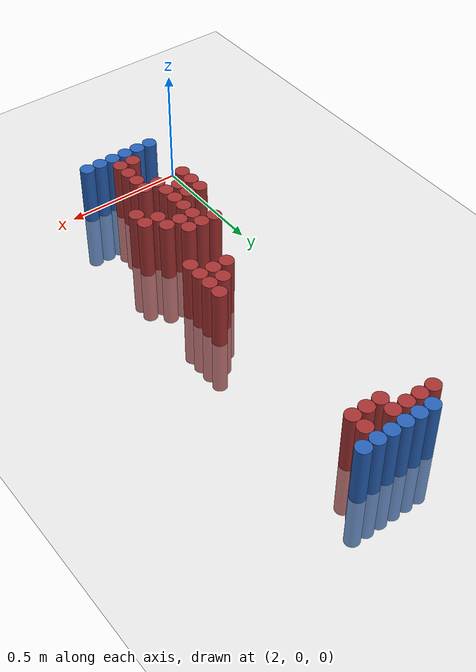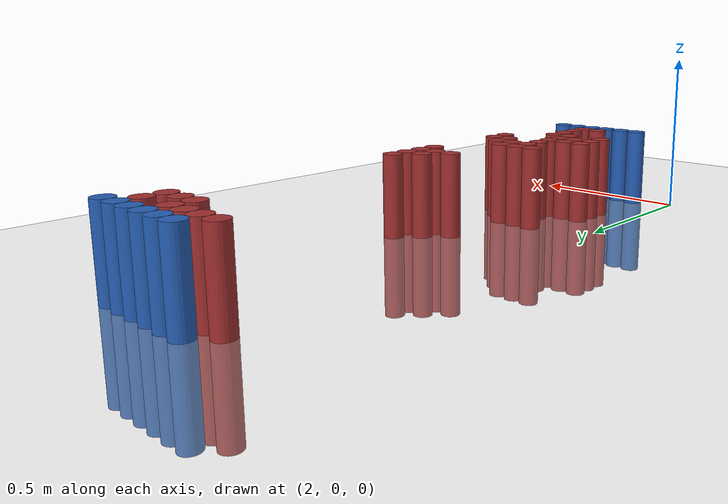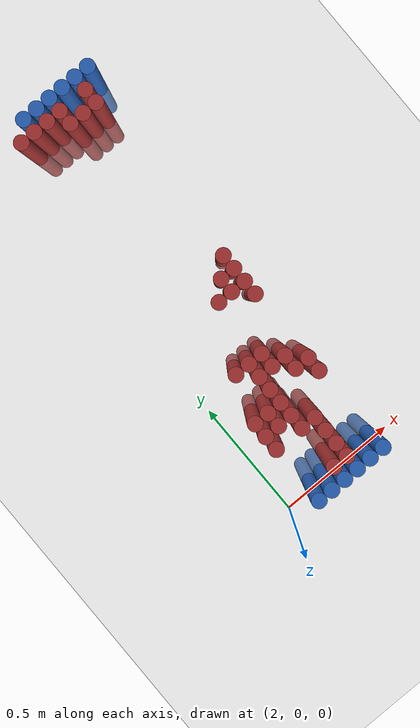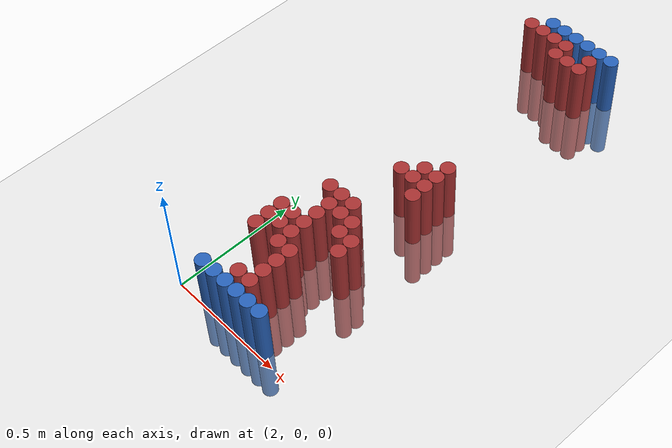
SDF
<sdf version="1.6">
 <world name="default">
  <model name="ground_plane">
   <static>1</static>
   <link name="link">
    <collision name="collision">
     <geometry><plane><normal>0 0 1</normal><size>100 100</size></plane></geometry>
     <surface><friction><ode><mu>100</mu><mu2>50</mu2></ode></friction></surface>
    </collision>
    <visual name="visual">
     <cast_shadows>0</cast_shadows>
     <geometry><plane><normal>0 0 1</normal><size>100 100</size></plane></geometry>
     <material>
      <script><uri>file://media/materials/scripts/gazebo.material</uri><name>Gazebo/Grey</name></script>
     </material>
    </visual>
   </link>
  </model>
  <model name="unit_cylinder_97">
   <static>1</static>
   <pose>2.190000 1.770000 0.000000 0.000000 0.000000 0.000000</pose>
   <link name="link">
    <inertial>
     <mass>1</mass>
     <inertia><ixx>0.145833</ixx><ixy>0</ixy><ixz>0</ixz><iyy>0.145833</iyy><iyz>0</iyz><izz>0.125</izz></inertia>
    </inertial>
    <collision name="collision">
     <geometry><cylinder><radius>0.030000</radius><length>0.5</length></cylinder></geometry>
    </collision>
    <visual name="visual">
     <geometry><cylinder><radius>0.030000</radius><length>0.5</length></cylinder></geometry>
     <material>
      <ambient>0.152000 0.379000 0.720000 1</ambient>
      <diffuse>0.152000 0.379000 0.720000 1</diffuse>
     </material>
     <material>
      <script><name>Gazebo/Grey</name><uri>file://media/materials/scripts/gazebo.material</uri></script>
     </material>
    </visual>
   </link>
  </model>
  <model name="unit_cylinder_98">
   <static>1</static>
   <pose>2.250000 1.770000 0.000000 0.000000 0.000000 0.000000</pose>
   <link name="link">
    <inertial>
     <mass>1</mass>
     <inertia><ixx>0.145833</ixx><ixy>0</ixy><ixz>0</ixz><iyy>0.145833</iyy><iyz>0</iyz><izz>0.125</izz></inertia>
    </inertial>
    <collision name="collision">
     <geometry><cylinder><radius>0.030000</radius><length>0.5</length></cylinder></geometry>
    </collision>
    <visual name="visual">
     <geometry><cylinder><radius>0.030000</radius><length>0.5</length></cylinder></geometry>
     <material>
      <ambient>0.152000 0.379000 0.720000 1</ambient>
      <diffuse>0.152000 0.379000 0.720000 1</diffuse>
     </material>
     <material>
      <script><name>Gazebo/Grey</name><uri>file://media/materials/scripts/gazebo.material</uri></script>
     </material>
    </visual>
   </link>
  </model>
  <model name="unit_cylinder_99">
   <static>1</static>
   <pose>2.310000 1.770000 0.000000 0.000000 0.000000 0.000000</pose>
   <link name="link">
    <inertial>
     <mass>1</mass>
     <inertia><ixx>0.145833</ixx><ixy>0</ixy><ixz>0</ixz><iyy>0.145833</iyy><iyz>0</iyz><izz>0.125</izz></inertia>
    </inertial>
    <collision name="collision">
     <geometry><cylinder><radius>0.030000</radius><length>0.5</length></cylinder></geometry>
    </collision>
    <visual name="visual">
     <geometry><cylinder><radius>0.030000</radius><length>0.5</length></cylinder></geometry>
     <material>
      <ambient>0.152000 0.379000 0.720000 1</ambient>
      <diffuse>0.152000 0.379000 0.720000 1</diffuse>
     </material>
     <material>
      <script><name>Gazebo/Grey</name><uri>file://media/materials/scripts/gazebo.material</uri></script>
     </material>
    </visual>
   </link>
  </model>
  <model name="unit_cylinder_100">
   <static>1</static>
   <pose>2.370000 1.770000 0.000000 0.000000 0.000000 0.000000</pose>
   <link name="link">
    <inertial>
     <mass>1</mass>
     <inertia><ixx>0.145833</ixx><ixy>0</ixy><ixz>0</ixz><iyy>0.145833</iyy><iyz>0</iyz><izz>0.125</izz></inertia>
    </inertial>
    <collision name="collision">
     <geometry><cylinder><radius>0.030000</radius><length>0.5</length></cylinder></geometry>
    </collision>
    <visual name="visual">
     <geometry><cylinder><radius>0.030000</radius><length>0.5</length></cylinder></geometry>
     <material>
      <ambient>0.152000 0.379000 0.720000 1</ambient>
      <diffuse>0.152000 0.379000 0.720000 1</diffuse>
     </material>
     <material>
      <script><name>Gazebo/Grey</name><uri>file://media/materials/scripts/gazebo.material</uri></script>
     </material>
    </visual>
   </link>
  </model>
  <model name="unit_cylinder_101">
   <static>1</static>
   <pose>2.430000 1.770000 0.000000 0.000000 0.000000 0.000000</pose>
   <link name="link">
    <inertial>
     <mass>1</mass>
     <inertia><ixx>0.145833</ixx><ixy>0</ixy><ixz>0</ixz><iyy>0.145833</iyy><iyz>0</iyz><izz>0.125</izz></inertia>
    </inertial>
    <collision name="collision">
     <geometry><cylinder><radius>0.030000</radius><length>0.5</length></cylinder></geometry>
    </collision>
    <visual name="visual">
     <geometry><cylinder><radius>0.030000</radius><length>0.5</length></cylinder></geometry>
     <material>
      <ambient>0.152000 0.379000 0.720000 1</ambient>
      <diffuse>0.152000 0.379000 0.720000 1</diffuse>
     </material>
     <material>
      <script><name>Gazebo/Grey</name><uri>file://media/materials/scripts/gazebo.material</uri></script>
     </material>
    </visual>
   </link>
  </model>
  <model name="unit_cylinder_102">
   <static>1</static>
   <pose>2.490000 1.770000 0.000000 0.000000 0.000000 0.000000</pose>
   <link name="link">
    <inertial>
     <mass>1</mass>
     <inertia><ixx>0.145833</ixx><ixy>0</ixy><ixz>0</ixz><iyy>0.145833</iyy><iyz>0</iyz><izz>0.125</izz></inertia>
    </inertial>
    <collision name="collision">
     <geometry><cylinder><radius>0.030000</radius><length>0.5</length></cylinder></geometry>
    </collision>
    <visual name="visual">
     <geometry><cylinder><radius>0.030000</radius><length>0.5</length></cylinder></geometry>
     <material>
      <ambient>0.152000 0.379000 0.720000 1</ambient>
      <diffuse>0.152000 0.379000 0.720000 1</diffuse>
     </material>
     <material>
      <script><name>Gazebo/Grey</name><uri>file://media/materials/scripts/gazebo.material</uri></script>
     </material>
    </visual>
   </link>
  </model>
  <model name="unit_cylinder_125">
   <static>1</static>
   <pose>2.130000 1.710000 0.000000 0.000000 0.000000 0.000000</pose>
   <link name="link">
    <inertial>
     <mass>1</mass>
     <inertia><ixx>0.145833</ixx><ixy>0</ixy><ixz>0</ixz><iyy>0.145833</iyy><iyz>0</iyz><izz>0.125</izz></inertia>
    </inertial>
    <collision name="collision">
     <geometry><cylinder><radius>0.030000</radius><length>0.5</length></cylinder></geometry>
    </collision>
    <visual name="visual">
     <geometry><cylinder><radius>0.030000</radius><length>0.5</length></cylinder></geometry>
     <material>
      <ambient>0.648000 0.192000 0.192000 1</ambient>
      <diffuse>0.648000 0.192000 0.192000 1</diffuse>
     </material>
     <material>
      <script><name>Gazebo/Grey</name><uri>file://media/materials/scripts/gazebo.material</uri></script>
     </material>
    </visual>
   </link>
  </model>
  <model name="unit_cylinder_126">
   <static>1</static>
   <pose>2.190000 1.710000 0.000000 0.000000 0.000000 0.000000</pose>
   <link name="link">
    <inertial>
     <mass>1</mass>
     <inertia><ixx>0.145833</ixx><ixy>0</ixy><ixz>0</ixz><iyy>0.145833</iyy><iyz>0</iyz><izz>0.125</izz></inertia>
    </inertial>
    <collision name="collision">
     <geometry><cylinder><radius>0.030000</radius><length>0.5</length></cylinder></geometry>
    </collision>
    <visual name="visual">
     <geometry><cylinder><radius>0.030000</radius><length>0.5</length></cylinder></geometry>
     <material>
      <ambient>0.648000 0.192000 0.192000 1</ambient>
      <diffuse>0.648000 0.192000 0.192000 1</diffuse>
     </material>
     <material>
      <script><name>Gazebo/Grey</name><uri>file://media/materials/scripts/gazebo.material</uri></script>
     </material>
    </visual>
   </link>
  </model>
  <model name="unit_cylinder_127">
   <static>1</static>
   <pose>2.250000 1.710000 0.000000 0.000000 0.000000 0.000000</pose>
   <link name="link">
    <inertial>
     <mass>1</mass>
     <inertia><ixx>0.145833</ixx><ixy>0</ixy><ixz>0</ixz><iyy>0.145833</iyy><iyz>0</iyz><izz>0.125</izz></inertia>
    </inertial>
    <collision name="collision">
     <geometry><cylinder><radius>0.030000</radius><length>0.5</length></cylinder></geometry>
    </collision>
    <visual name="visual">
     <geometry><cylinder><radius>0.030000</radius><length>0.5</length></cylinder></geometry>
     <material>
      <ambient>0.648000 0.192000 0.192000 1</ambient>
      <diffuse>0.648000 0.192000 0.192000 1</diffuse>
     </material>
     <material>
      <script><name>Gazebo/Grey</name><uri>file://media/materials/scripts/gazebo.material</uri></script>
     </material>
    </visual>
   </link>
  </model>
  <model name="unit_cylinder_128">
   <static>1</static>
   <pose>2.310000 1.710000 0.000000 0.000000 0.000000 0.000000</pose>
   <link name="link">
    <inertial>
     <mass>1</mass>
     <inertia><ixx>0.145833</ixx><ixy>0</ixy><ixz>0</ixz><iyy>0.145833</iyy><iyz>0</iyz><izz>0.125</izz></inertia>
    </inertial>
    <collision name="collision">
     <geometry><cylinder><radius>0.030000</radius><length>0.5</length></cylinder></geometry>
    </collision>
    <visual name="visual">
     <geometry><cylinder><radius>0.030000</radius><length>0.5</length></cylinder></geometry>
     <material>
      <ambient>0.648000 0.192000 0.192000 1</ambient>
      <diffuse>0.648000 0.192000 0.192000 1</diffuse>
     </material>
     <material>
      <script><name>Gazebo/Grey</name><uri>file://media/materials/scripts/gazebo.material</uri></script>
     </material>
    </visual>
   </link>
  </model>
  <model name="unit_cylinder_129">
   <static>1</static>
   <pose>2.430000 1.710000 0.000000 0.000000 0.000000 0.000000</pose>
   <link name="link">
    <inertial>
     <mass>1</mass>
     <inertia><ixx>0.145833</ixx><ixy>0</ixy><ixz>0</ixz><iyy>0.145833</iyy><iyz>0</iyz><izz>0.125</izz></inertia>
    </inertial>
    <collision name="collision">
     <geometry><cylinder><radius>0.030000</radius><length>0.5</length></cylinder></geometry>
    </collision>
    <visual name="visual">
     <geometry><cylinder><radius>0.030000</radius><length>0.5</length></cylinder></geometry>
     <material>
      <ambient>0.648000 0.192000 0.192000 1</ambient>
      <diffuse>0.648000 0.192000 0.192000 1</diffuse>
     </material>
     <material>
      <script><name>Gazebo/Grey</name><uri>file://media/materials/scripts/gazebo.material</uri></script>
     </material>
    </visual>
   </link>
  </model>
  <model name="unit_cylinder_143">
   <static>1</static>
   <pose>2.310000 1.650000 0.000000 0.000000 0.000000 0.000000</pose>
   <link name="link">
    <inertial>
     <mass>1</mass>
     <inertia><ixx>0.145833</ixx><ixy>0</ixy><ixz>0</ixz><iyy>0.145833</iyy><iyz>0</iyz><izz>0.125</izz></inertia>
    </inertial>
    <collision name="collision">
     <geometry><cylinder><radius>0.030000</radius><length>0.5</length></cylinder></geometry>
    </collision>
    <visual name="visual">
     <geometry><cylinder><radius>0.030000</radius><length>0.5</length></cylinder></geometry>
     <material>
      <ambient>0.648000 0.192000 0.192000 1</ambient>
      <diffuse>0.648000 0.192000 0.192000 1</diffuse>
     </material>
     <material>
      <script><name>Gazebo/Grey</name><uri>file://media/materials/scripts/gazebo.material</uri></script>
     </material>
    </visual>
   </link>
  </model>
  <model name="unit_cylinder_144">
   <static>1</static>
   <pose>2.370000 1.650000 0.000000 0.000000 0.000000 0.000000</pose>
   <link name="link">
    <inertial>
     <mass>1</mass>
     <inertia><ixx>0.145833</ixx><ixy>0</ixy><ixz>0</ixz><iyy>0.145833</iyy><iyz>0</iyz><izz>0.125</izz></inertia>
    </inertial>
    <collision name="collision">
     <geometry><cylinder><radius>0.030000</radius><length>0.5</length></cylinder></geometry>
    </collision>
    <visual name="visual">
     <geometry><cylinder><radius>0.030000</radius><length>0.5</length></cylinder></geometry>
     <material>
      <ambient>0.648000 0.192000 0.192000 1</ambient>
      <diffuse>0.648000 0.192000 0.192000 1</diffuse>
     </material>
     <material>
      <script><name>Gazebo/Grey</name><uri>file://media/materials/scripts/gazebo.material</uri></script>
     </material>
    </visual>
   </link>
  </model>
  <model name="unit_cylinder_145">
   <static>1</static>
   <pose>2.430000 1.650000 0.000000 0.000000 0.000000 0.000000</pose>
   <link name="link">
    <inertial>
     <mass>1</mass>
     <inertia><ixx>0.145833</ixx><ixy>0</ixy><ixz>0</ixz><iyy>0.145833</iyy><iyz>0</iyz><izz>0.125</izz></inertia>
    </inertial>
    <collision name="collision">
     <geometry><cylinder><radius>0.030000</radius><length>0.5</length></cylinder></geometry>
    </collision>
    <visual name="visual">
     <geometry><cylinder><radius>0.030000</radius><length>0.5</length></cylinder></geometry>
     <material>
      <ambient>0.648000 0.192000 0.192000 1</ambient>
      <diffuse>0.648000 0.192000 0.192000 1</diffuse>
     </material>
     <material>
      <script><name>Gazebo/Grey</name><uri>file://media/materials/scripts/gazebo.material</uri></script>
     </material>
    </visual>
   </link>
  </model>
  <model name="unit_cylinder_182">
   <static>1</static>
   <pose>2.430000 0.930000 0.000000 0.000000 0.000000 0.000000</pose>
   <link name="link">
    <inertial>
     <mass>1</mass>
     <inertia><ixx>0.145833</ixx><ixy>0</ixy><ixz>0</ixz><iyy>0.145833</iyy><iyz>0</iyz><izz>0.125</izz></inertia>
    </inertial>
    <collision name="collision">
     <geometry><cylinder><radius>0.030000</radius><length>0.5</length></cylinder></geometry>
    </collision>
    <visual name="visual">
     <geometry><cylinder><radius>0.030000</radius><length>0.5</length></cylinder></geometry>
     <material>
      <ambient>0.648000 0.192000 0.192000 1</ambient>
      <diffuse>0.648000 0.192000 0.192000 1</diffuse>
     </material>
     <material>
      <script><name>Gazebo/Grey</name><uri>file://media/materials/scripts/gazebo.material</uri></script>
     </material>
    </visual>
   </link>
  </model>
  <model name="unit_cylinder_186">
   <static>1</static>
   <pose>2.370000 0.870000 0.000000 0.000000 0.000000 0.000000</pose>
   <link name="link">
    <inertial>
     <mass>1</mass>
     <inertia><ixx>0.145833</ixx><ixy>0</ixy><ixz>0</ixz><iyy>0.145833</iyy><iyz>0</iyz><izz>0.125</izz></inertia>
    </inertial>
    <collision name="collision">
     <geometry><cylinder><radius>0.030000</radius><length>0.5</length></cylinder></geometry>
    </collision>
    <visual name="visual">
     <geometry><cylinder><radius>0.030000</radius><length>0.5</length></cylinder></geometry>
     <material>
      <ambient>0.648000 0.192000 0.192000 1</ambient>
      <diffuse>0.648000 0.192000 0.192000 1</diffuse>
     </material>
     <material>
      <script><name>Gazebo/Grey</name><uri>file://media/materials/scripts/gazebo.material</uri></script>
     </material>
    </visual>
   </link>
  </model>
  <model name="unit_cylinder_187">
   <static>1</static>
   <pose>2.430000 0.870000 0.000000 0.000000 0.000000 0.000000</pose>
   <link name="link">
    <inertial>
     <mass>1</mass>
     <inertia><ixx>0.145833</ixx><ixy>0</ixy><ixz>0</ixz><iyy>0.145833</iyy><iyz>0</iyz><izz>0.125</izz></inertia>
    </inertial>
    <collision name="collision">
     <geometry><cylinder><radius>0.030000</radius><length>0.5</length></cylinder></geometry>
    </collision>
    <visual name="visual">
     <geometry><cylinder><radius>0.030000</radius><length>0.5</length></cylinder></geometry>
     <material>
      <ambient>0.648000 0.192000 0.192000 1</ambient>
      <diffuse>0.648000 0.192000 0.192000 1</diffuse>
     </material>
     <material>
      <script><name>Gazebo/Grey</name><uri>file://media/materials/scripts/gazebo.material</uri></script>
     </material>
    </visual>
   </link>
  </model>
  <model name="unit_cylinder_192">
   <static>1</static>
   <pose>2.310000 0.810000 0.000000 0.000000 0.000000 0.000000</pose>
   <link name="link">
    <inertial>
     <mass>1</mass>
     <inertia><ixx>0.145833</ixx><ixy>0</ixy><ixz>0</ixz><iyy>0.145833</iyy><iyz>0</iyz><izz>0.125</izz></inertia>
    </inertial>
    <collision name="collision">
     <geometry><cylinder><radius>0.030000</radius><length>0.5</length></cylinder></geometry>
    </collision>
    <visual name="visual">
     <geometry><cylinder><radius>0.030000</radius><length>0.5</length></cylinder></geometry>
     <material>
      <ambient>0.648000 0.192000 0.192000 1</ambient>
      <diffuse>0.648000 0.192000 0.192000 1</diffuse>
     </material>
     <material>
      <script><name>Gazebo/Grey</name><uri>file://media/materials/scripts/gazebo.material</uri></script>
     </material>
    </visual>
   </link>
  </model>
  <model name="unit_cylinder_193">
   <static>1</static>
   <pose>2.370000 0.810000 0.000000 0.000000 0.000000 0.000000</pose>
   <link name="link">
    <inertial>
     <mass>1</mass>
     <inertia><ixx>0.145833</ixx><ixy>0</ixy><ixz>0</ixz><iyy>0.145833</iyy><iyz>0</iyz><izz>0.125</izz></inertia>
    </inertial>
    <collision name="collision">
     <geometry><cylinder><radius>0.030000</radius><length>0.5</length></cylinder></geometry>
    </collision>
    <visual name="visual">
     <geometry><cylinder><radius>0.030000</radius><length>0.5</length></cylinder></geometry>
     <material>
      <ambient>0.648000 0.192000 0.192000 1</ambient>
      <diffuse>0.648000 0.192000 0.192000 1</diffuse>
     </material>
     <material>
      <script><name>Gazebo/Grey</name><uri>file://media/materials/scripts/gazebo.material</uri></script>
     </material>
    </visual>
   </link>
  </model>
  <model name="unit_cylinder_194">
   <static>1</static>
   <pose>2.430000 0.810000 0.000000 0.000000 0.000000 0.000000</pose>
   <link name="link">
    <inertial>
     <mass>1</mass>
     <inertia><ixx>0.145833</ixx><ixy>0</ixy><ixz>0</ixz><iyy>0.145833</iyy><iyz>0</iyz><izz>0.125</izz></inertia>
    </inertial>
    <collision name="collision">
     <geometry><cylinder><radius>0.030000</radius><length>0.5</length></cylinder></geometry>
    </collision>
    <visual name="visual">
     <geometry><cylinder><radius>0.030000</radius><length>0.5</length></cylinder></geometry>
     <material>
      <ambient>0.648000 0.192000 0.192000 1</ambient>
      <diffuse>0.648000 0.192000 0.192000 1</diffuse>
     </material>
     <material>
      <script><name>Gazebo/Grey</name><uri>file://media/materials/scripts/gazebo.material</uri></script>
     </material>
    </visual>
   </link>
  </model>
  <model name="unit_cylinder_204">
   <static>1</static>
   <pose>2.430000 0.750000 0.000000 0.000000 0.000000 0.000000</pose>
   <link name="link">
    <inertial>
     <mass>1</mass>
     <inertia><ixx>0.145833</ixx><ixy>0</ixy><ixz>0</ixz><iyy>0.145833</iyy><iyz>0</iyz><izz>0.125</izz></inertia>
    </inertial>
    <collision name="collision">
     <geometry><cylinder><radius>0.030000</radius><length>0.5</length></cylinder></geometry>
    </collision>
    <visual name="visual">
     <geometry><cylinder><radius>0.030000</radius><length>0.5</length></cylinder></geometry>
     <material>
      <ambient>0.648000 0.192000 0.192000 1</ambient>
      <diffuse>0.648000 0.192000 0.192000 1</diffuse>
     </material>
     <material>
      <script><name>Gazebo/Grey</name><uri>file://media/materials/scripts/gazebo.material</uri></script>
     </material>
    </visual>
   </link>
  </model>
  <model name="unit_cylinder_231">
   <static>1</static>
   <pose>2.190000 0.570000 0.000000 0.000000 0.000000 0.000000</pose>
   <link name="link">
    <inertial>
     <mass>1</mass>
     <inertia><ixx>0.145833</ixx><ixy>0</ixy><ixz>0</ixz><iyy>0.145833</iyy><iyz>0</iyz><izz>0.125</izz></inertia>
    </inertial>
    <collision name="collision">
     <geometry><cylinder><radius>0.030000</radius><length>0.5</length></cylinder></geometry>
    </collision>
    <visual name="visual">
     <geometry><cylinder><radius>0.030000</radius><length>0.5</length></cylinder></geometry>
     <material>
      <ambient>0.648000 0.192000 0.192000 1</ambient>
      <diffuse>0.648000 0.192000 0.192000 1</diffuse>
     </material>
     <material>
      <script><name>Gazebo/Grey</name><uri>file://media/materials/scripts/gazebo.material</uri></script>
     </material>
    </visual>
   </link>
  </model>
  <model name="unit_cylinder_232">
   <static>1</static>
   <pose>2.250000 0.570000 0.000000 0.000000 0.000000 0.000000</pose>
   <link name="link">
    <inertial>
     <mass>1</mass>
     <inertia><ixx>0.145833</ixx><ixy>0</ixy><ixz>0</ixz><iyy>0.145833</iyy><iyz>0</iyz><izz>0.125</izz></inertia>
    </inertial>
    <collision name="collision">
     <geometry><cylinder><radius>0.030000</radius><length>0.5</length></cylinder></geometry>
    </collision>
    <visual name="visual">
     <geometry><cylinder><radius>0.030000</radius><length>0.5</length></cylinder></geometry>
     <material>
      <ambient>0.648000 0.192000 0.192000 1</ambient>
      <diffuse>0.648000 0.192000 0.192000 1</diffuse>
     </material>
     <material>
      <script><name>Gazebo/Grey</name><uri>file://media/materials/scripts/gazebo.material</uri></script>
     </material>
    </visual>
   </link>
  </model>
  <model name="unit_cylinder_233">
   <static>1</static>
   <pose>2.310000 0.570000 0.000000 0.000000 0.000000 0.000000</pose>
   <link name="link">
    <inertial>
     <mass>1</mass>
     <inertia><ixx>0.145833</ixx><ixy>0</ixy><ixz>0</ixz><iyy>0.145833</iyy><iyz>0</iyz><izz>0.125</izz></inertia>
    </inertial>
    <collision name="collision">
     <geometry><cylinder><radius>0.030000</radius><length>0.5</length></cylinder></geometry>
    </collision>
    <visual name="visual">
     <geometry><cylinder><radius>0.030000</radius><length>0.5</length></cylinder></geometry>
     <material>
      <ambient>0.648000 0.192000 0.192000 1</ambient>
      <diffuse>0.648000 0.192000 0.192000 1</diffuse>
     </material>
     <material>
      <script><name>Gazebo/Grey</name><uri>file://media/materials/scripts/gazebo.material</uri></script>
     </material>
    </visual>
   </link>
  </model>
  <model name="unit_cylinder_238">
   <static>1</static>
   <pose>2.250000 0.510000 0.000000 0.000000 0.000000 0.000000</pose>
   <link name="link">
    <inertial>
     <mass>1</mass>
     <inertia><ixx>0.145833</ixx><ixy>0</ixy><ixz>0</ixz><iyy>0.145833</iyy><iyz>0</iyz><izz>0.125</izz></inertia>
    </inertial>
    <collision name="collision">
     <geometry><cylinder><radius>0.030000</radius><length>0.5</length></cylinder></geometry>
    </collision>
    <visual name="visual">
     <geometry><cylinder><radius>0.030000</radius><length>0.5</length></cylinder></geometry>
     <material>
      <ambient>0.648000 0.192000 0.192000 1</ambient>
      <diffuse>0.648000 0.192000 0.192000 1</diffuse>
     </material>
     <material>
      <script><name>Gazebo/Grey</name><uri>file://media/materials/scripts/gazebo.material</uri></script>
     </material>
    </visual>
   </link>
  </model>
  <model name="unit_cylinder_239">
   <static>1</static>
   <pose>2.310000 0.510000 0.000000 0.000000 0.000000 0.000000</pose>
   <link name="link">
    <inertial>
     <mass>1</mass>
     <inertia><ixx>0.145833</ixx><ixy>0</ixy><ixz>0</ixz><iyy>0.145833</iyy><iyz>0</iyz><izz>0.125</izz></inertia>
    </inertial>
    <collision name="collision">
     <geometry><cylinder><radius>0.030000</radius><length>0.5</length></cylinder></geometry>
    </collision>
    <visual name="visual">
     <geometry><cylinder><radius>0.030000</radius><length>0.5</length></cylinder></geometry>
     <material>
      <ambient>0.648000 0.192000 0.192000 1</ambient>
      <diffuse>0.648000 0.192000 0.192000 1</diffuse>
     </material>
     <material>
      <script><name>Gazebo/Grey</name><uri>file://media/materials/scripts/gazebo.material</uri></script>
     </material>
    </visual>
   </link>
  </model>
  <model name="unit_cylinder_240">
   <static>1</static>
   <pose>2.370000 0.510000 0.000000 0.000000 0.000000 0.000000</pose>
   <link name="link">
    <inertial>
     <mass>1</mass>
     <inertia><ixx>0.145833</ixx><ixy>0</ixy><ixz>0</ixz><iyy>0.145833</iyy><iyz>0</iyz><izz>0.125</izz></inertia>
    </inertial>
    <collision name="collision">
     <geometry><cylinder><radius>0.030000</radius><length>0.5</length></cylinder></geometry>
    </collision>
    <visual name="visual">
     <geometry><cylinder><radius>0.030000</radius><length>0.5</length></cylinder></geometry>
     <material>
      <ambient>0.648000 0.192000 0.192000 1</ambient>
      <diffuse>0.648000 0.192000 0.192000 1</diffuse>
     </material>
     <material>
      <script><name>Gazebo/Grey</name><uri>file://media/materials/scripts/gazebo.material</uri></script>
     </material>
    </visual>
   </link>
  </model>
  <model name="unit_cylinder_245">
   <static>1</static>
   <pose>2.250000 0.450000 0.000000 0.000000 0.000000 0.000000</pose>
   <link name="link">
    <inertial>
     <mass>1</mass>
     <inertia><ixx>0.145833</ixx><ixy>0</ixy><ixz>0</ixz><iyy>0.145833</iyy><iyz>0</iyz><izz>0.125</izz></inertia>
    </inertial>
    <collision name="collision">
     <geometry><cylinder><radius>0.030000</radius><length>0.5</length></cylinder></geometry>
    </collision>
    <visual name="visual">
     <geometry><cylinder><radius>0.030000</radius><length>0.5</length></cylinder></geometry>
     <material>
      <ambient>0.648000 0.192000 0.192000 1</ambient>
      <diffuse>0.648000 0.192000 0.192000 1</diffuse>
     </material>
     <material>
      <script><name>Gazebo/Grey</name><uri>file://media/materials/scripts/gazebo.material</uri></script>
     </material>
    </visual>
   </link>
  </model>
  <model name="unit_cylinder_246">
   <static>1</static>
   <pose>2.370000 0.450000 0.000000 0.000000 0.000000 0.000000</pose>
   <link name="link">
    <inertial>
     <mass>1</mass>
     <inertia><ixx>0.145833</ixx><ixy>0</ixy><ixz>0</ixz><iyy>0.145833</iyy><iyz>0</iyz><izz>0.125</izz></inertia>
    </inertial>
    <collision name="collision">
     <geometry><cylinder><radius>0.030000</radius><length>0.5</length></cylinder></geometry>
    </collision>
    <visual name="visual">
     <geometry><cylinder><radius>0.030000</radius><length>0.5</length></cylinder></geometry>
     <material>
      <ambient>0.648000 0.192000 0.192000 1</ambient>
      <diffuse>0.648000 0.192000 0.192000 1</diffuse>
     </material>
     <material>
      <script><name>Gazebo/Grey</name><uri>file://media/materials/scripts/gazebo.material</uri></script>
     </material>
    </visual>
   </link>
  </model>
  <model name="unit_cylinder_247">
   <static>1</static>
   <pose>2.430000 0.450000 0.000000 0.000000 0.000000 0.000000</pose>
   <link name="link">
    <inertial>
     <mass>1</mass>
     <inertia><ixx>0.145833</ixx><ixy>0</ixy><ixz>0</ixz><iyy>0.145833</iyy><iyz>0</iyz><izz>0.125</izz></inertia>
    </inertial>
    <collision name="collision">
     <geometry><cylinder><radius>0.030000</radius><length>0.5</length></cylinder></geometry>
    </collision>
    <visual name="visual">
     <geometry><cylinder><radius>0.030000</radius><length>0.5</length></cylinder></geometry>
     <material>
      <ambient>0.648000 0.192000 0.192000 1</ambient>
      <diffuse>0.648000 0.192000 0.192000 1</diffuse>
     </material>
     <material>
      <script><name>Gazebo/Grey</name><uri>file://media/materials/scripts/gazebo.material</uri></script>
     </material>
    </visual>
   </link>
  </model>
  <model name="unit_cylinder_255">
   <static>1</static>
   <pose>2.130000 0.390000 0.000000 0.000000 0.000000 0.000000</pose>
   <link name="link">
    <inertial>
     <mass>1</mass>
     <inertia><ixx>0.145833</ixx><ixy>0</ixy><ixz>0</ixz><iyy>0.145833</iyy><iyz>0</iyz><izz>0.125</izz></inertia>
    </inertial>
    <collision name="collision">
     <geometry><cylinder><radius>0.030000</radius><length>0.5</length></cylinder></geometry>
    </collision>
    <visual name="visual">
     <geometry><cylinder><radius>0.030000</radius><length>0.5</length></cylinder></geometry>
     <material>
      <ambient>0.648000 0.192000 0.192000 1</ambient>
      <diffuse>0.648000 0.192000 0.192000 1</diffuse>
     </material>
     <material>
      <script><name>Gazebo/Grey</name><uri>file://media/materials/scripts/gazebo.material</uri></script>
     </material>
    </visual>
   </link>
  </model>
  <model name="unit_cylinder_256">
   <static>1</static>
   <pose>2.190000 0.390000 0.000000 0.000000 0.000000 0.000000</pose>
   <link name="link">
    <inertial>
     <mass>1</mass>
     <inertia><ixx>0.145833</ixx><ixy>0</ixy><ixz>0</ixz><iyy>0.145833</iyy><iyz>0</iyz><izz>0.125</izz></inertia>
    </inertial>
    <collision name="collision">
     <geometry><cylinder><radius>0.030000</radius><length>0.5</length></cylinder></geometry>
    </collision>
    <visual name="visual">
     <geometry><cylinder><radius>0.030000</radius><length>0.5</length></cylinder></geometry>
     <material>
      <ambient>0.648000 0.192000 0.192000 1</ambient>
      <diffuse>0.648000 0.192000 0.192000 1</diffuse>
     </material>
     <material>
      <script><name>Gazebo/Grey</name><uri>file://media/materials/scripts/gazebo.material</uri></script>
     </material>
    </visual>
   </link>
  </model>
  <model name="unit_cylinder_257">
   <static>1</static>
   <pose>2.250000 0.390000 0.000000 0.000000 0.000000 0.000000</pose>
   <link name="link">
    <inertial>
     <mass>1</mass>
     <inertia><ixx>0.145833</ixx><ixy>0</ixy><ixz>0</ixz><iyy>0.145833</iyy><iyz>0</iyz><izz>0.125</izz></inertia>
    </inertial>
    <collision name="collision">
     <geometry><cylinder><radius>0.030000</radius><length>0.5</length></cylinder></geometry>
    </collision>
    <visual name="visual">
     <geometry><cylinder><radius>0.030000</radius><length>0.5</length></cylinder></geometry>
     <material>
      <ambient>0.648000 0.192000 0.192000 1</ambient>
      <diffuse>0.648000 0.192000 0.192000 1</diffuse>
     </material>
     <material>
      <script><name>Gazebo/Grey</name><uri>file://media/materials/scripts/gazebo.material</uri></script>
     </material>
    </visual>
   </link>
  </model>
  <model name="unit_cylinder_258">
   <static>1</static>
   <pose>2.430000 0.390000 0.000000 0.000000 0.000000 0.000000</pose>
   <link name="link">
    <inertial>
     <mass>1</mass>
     <inertia><ixx>0.145833</ixx><ixy>0</ixy><ixz>0</ixz><iyy>0.145833</iyy><iyz>0</iyz><izz>0.125</izz></inertia>
    </inertial>
    <collision name="collision">
     <geometry><cylinder><radius>0.030000</radius><length>0.5</length></cylinder></geometry>
    </collision>
    <visual name="visual">
     <geometry><cylinder><radius>0.030000</radius><length>0.5</length></cylinder></geometry>
     <material>
      <ambient>0.648000 0.192000 0.192000 1</ambient>
      <diffuse>0.648000 0.192000 0.192000 1</diffuse>
     </material>
     <material>
      <script><name>Gazebo/Grey</name><uri>file://media/materials/scripts/gazebo.material</uri></script>
     </material>
    </visual>
   </link>
  </model>
  <model name="unit_cylinder_267">
   <static>1</static>
   <pose>2.130000 0.330000 0.000000 0.000000 0.000000 0.000000</pose>
   <link name="link">
    <inertial>
     <mass>1</mass>
     <inertia><ixx>0.145833</ixx><ixy>0</ixy><ixz>0</ixz><iyy>0.145833</iyy><iyz>0</iyz><izz>0.125</izz></inertia>
    </inertial>
    <collision name="collision">
     <geometry><cylinder><radius>0.030000</radius><length>0.5</length></cylinder></geometry>
    </collision>
    <visual name="visual">
     <geometry><cylinder><radius>0.030000</radius><length>0.5</length></cylinder></geometry>
     <material>
      <ambient>0.648000 0.192000 0.192000 1</ambient>
      <diffuse>0.648000 0.192000 0.192000 1</diffuse>
     </material>
     <material>
      <script><name>Gazebo/Grey</name><uri>file://media/materials/scripts/gazebo.material</uri></script>
     </material>
    </visual>
   </link>
  </model>
  <model name="unit_cylinder_268">
   <static>1</static>
   <pose>2.190000 0.330000 0.000000 0.000000 0.000000 0.000000</pose>
   <link name="link">
    <inertial>
     <mass>1</mass>
     <inertia><ixx>0.145833</ixx><ixy>0</ixy><ixz>0</ixz><iyy>0.145833</iyy><iyz>0</iyz><izz>0.125</izz></inertia>
    </inertial>
    <collision name="collision">
     <geometry><cylinder><radius>0.030000</radius><length>0.5</length></cylinder></geometry>
    </collision>
    <visual name="visual">
     <geometry><cylinder><radius>0.030000</radius><length>0.5</length></cylinder></geometry>
     <material>
      <ambient>0.648000 0.192000 0.192000 1</ambient>
      <diffuse>0.648000 0.192000 0.192000 1</diffuse>
     </material>
     <material>
      <script><name>Gazebo/Grey</name><uri>file://media/materials/scripts/gazebo.material</uri></script>
     </material>
    </visual>
   </link>
  </model>
  <model name="unit_cylinder_269">
   <static>1</static>
   <pose>2.250000 0.330000 0.000000 0.000000 0.000000 0.000000</pose>
   <link name="link">
    <inertial>
     <mass>1</mass>
     <inertia><ixx>0.145833</ixx><ixy>0</ixy><ixz>0</ixz><iyy>0.145833</iyy><iyz>0</iyz><izz>0.125</izz></inertia>
    </inertial>
    <collision name="collision">
     <geometry><cylinder><radius>0.030000</radius><length>0.5</length></cylinder></geometry>
    </collision>
    <visual name="visual">
     <geometry><cylinder><radius>0.030000</radius><length>0.5</length></cylinder></geometry>
     <material>
      <ambient>0.648000 0.192000 0.192000 1</ambient>
      <diffuse>0.648000 0.192000 0.192000 1</diffuse>
     </material>
     <material>
      <script><name>Gazebo/Grey</name><uri>file://media/materials/scripts/gazebo.material</uri></script>
     </material>
    </visual>
   </link>
  </model>
  <model name="unit_cylinder_278">
   <static>1</static>
   <pose>2.130000 0.270000 0.000000 0.000000 0.000000 0.000000</pose>
   <link name="link">
    <inertial>
     <mass>1</mass>
     <inertia><ixx>0.145833</ixx><ixy>0</ixy><ixz>0</ixz><iyy>0.145833</iyy><iyz>0</iyz><izz>0.125</izz></inertia>
    </inertial>
    <collision name="collision">
     <geometry><cylinder><radius>0.030000</radius><length>0.5</length></cylinder></geometry>
    </collision>
    <visual name="visual">
     <geometry><cylinder><radius>0.030000</radius><length>0.5</length></cylinder></geometry>
     <material>
      <ambient>0.648000 0.192000 0.192000 1</ambient>
      <diffuse>0.648000 0.192000 0.192000 1</diffuse>
     </material>
     <material>
      <script><name>Gazebo/Grey</name><uri>file://media/materials/scripts/gazebo.material</uri></script>
     </material>
    </visual>
   </link>
  </model>
  <model name="unit_cylinder_279">
   <static>1</static>
   <pose>2.250000 0.270000 0.000000 0.000000 0.000000 0.000000</pose>
   <link name="link">
    <inertial>
     <mass>1</mass>
     <inertia><ixx>0.145833</ixx><ixy>0</ixy><ixz>0</ixz><iyy>0.145833</iyy><iyz>0</iyz><izz>0.125</izz></inertia>
    </inertial>
    <collision name="collision">
     <geometry><cylinder><radius>0.030000</radius><length>0.5</length></cylinder></geometry>
    </collision>
    <visual name="visual">
     <geometry><cylinder><radius>0.030000</radius><length>0.5</length></cylinder></geometry>
     <material>
      <ambient>0.648000 0.192000 0.192000 1</ambient>
      <diffuse>0.648000 0.192000 0.192000 1</diffuse>
     </material>
     <material>
      <script><name>Gazebo/Grey</name><uri>file://media/materials/scripts/gazebo.material</uri></script>
     </material>
    </visual>
   </link>
  </model>
  <model name="unit_cylinder_280">
   <static>1</static>
   <pose>2.310000 0.270000 0.000000 0.000000 0.000000 0.000000</pose>
   <link name="link">
    <inertial>
     <mass>1</mass>
     <inertia><ixx>0.145833</ixx><ixy>0</ixy><ixz>0</ixz><iyy>0.145833</iyy><iyz>0</iyz><izz>0.125</izz></inertia>
    </inertial>
    <collision name="collision">
     <geometry><cylinder><radius>0.030000</radius><length>0.5</length></cylinder></geometry>
    </collision>
    <visual name="visual">
     <geometry><cylinder><radius>0.030000</radius><length>0.5</length></cylinder></geometry>
     <material>
      <ambient>0.648000 0.192000 0.192000 1</ambient>
      <diffuse>0.648000 0.192000 0.192000 1</diffuse>
     </material>
     <material>
      <script><name>Gazebo/Grey</name><uri>file://media/materials/scripts/gazebo.material</uri></script>
     </material>
    </visual>
   </link>
  </model>
  <model name="unit_cylinder_289">
   <static>1</static>
   <pose>2.310000 0.210000 0.000000 0.000000 0.000000 0.000000</pose>
   <link name="link">
    <inertial>
     <mass>1</mass>
     <inertia><ixx>0.145833</ixx><ixy>0</ixy><ixz>0</ixz><iyy>0.145833</iyy><iyz>0</iyz><izz>0.125</izz></inertia>
    </inertial>
    <collision name="collision">
     <geometry><cylinder><radius>0.030000</radius><length>0.5</length></cylinder></geometry>
    </collision>
    <visual name="visual">
     <geometry><cylinder><radius>0.030000</radius><length>0.5</length></cylinder></geometry>
     <material>
      <ambient>0.648000 0.192000 0.192000 1</ambient>
      <diffuse>0.648000 0.192000 0.192000 1</diffuse>
     </material>
     <material>
      <script><name>Gazebo/Grey</name><uri>file://media/materials/scripts/gazebo.material</uri></script>
     </material>
    </visual>
   </link>
  </model>
  <model name="unit_cylinder_297">
   <static>1</static>
   <pose>2.310000 0.150000 0.000000 0.000000 0.000000 0.000000</pose>
   <link name="link">
    <inertial>
     <mass>1</mass>
     <inertia><ixx>0.145833</ixx><ixy>0</ixy><ixz>0</ixz><iyy>0.145833</iyy><iyz>0</iyz><izz>0.125</izz></inertia>
    </inertial>
    <collision name="collision">
     <geometry><cylinder><radius>0.030000</radius><length>0.5</length></cylinder></geometry>
    </collision>
    <visual name="visual">
     <geometry><cylinder><radius>0.030000</radius><length>0.5</length></cylinder></geometry>
     <material>
      <ambient>0.648000 0.192000 0.192000 1</ambient>
      <diffuse>0.648000 0.192000 0.192000 1</diffuse>
     </material>
     <material>
      <script><name>Gazebo/Grey</name><uri>file://media/materials/scripts/gazebo.material</uri></script>
     </material>
    </visual>
   </link>
  </model>
  <model name="unit_cylinder_304">
   <static>1</static>
   <pose>2.250000 0.090000 0.000000 0.000000 0.000000 0.000000</pose>
   <link name="link">
    <inertial>
     <mass>1</mass>
     <inertia><ixx>0.145833</ixx><ixy>0</ixy><ixz>0</ixz><iyy>0.145833</iyy><iyz>0</iyz><izz>0.125</izz></inertia>
    </inertial>
    <collision name="collision">
     <geometry><cylinder><radius>0.030000</radius><length>0.5</length></cylinder></geometry>
    </collision>
    <visual name="visual">
     <geometry><cylinder><radius>0.030000</radius><length>0.5</length></cylinder></geometry>
     <material>
      <ambient>0.648000 0.192000 0.192000 1</ambient>
      <diffuse>0.648000 0.192000 0.192000 1</diffuse>
     </material>
     <material>
      <script><name>Gazebo/Grey</name><uri>file://media/materials/scripts/gazebo.material</uri></script>
     </material>
    </visual>
   </link>
  </model>
  <model name="unit_cylinder_305">
   <static>1</static>
   <pose>2.310000 0.090000 0.000000 0.000000 0.000000 0.000000</pose>
   <link name="link">
    <inertial>
     <mass>1</mass>
     <inertia><ixx>0.145833</ixx><ixy>0</ixy><ixz>0</ixz><iyy>0.145833</iyy><iyz>0</iyz><izz>0.125</izz></inertia>
    </inertial>
    <collision name="collision">
     <geometry><cylinder><radius>0.030000</radius><length>0.5</length></cylinder></geometry>
    </collision>
    <visual name="visual">
     <geometry><cylinder><radius>0.030000</radius><length>0.5</length></cylinder></geometry>
     <material>
      <ambient>0.648000 0.192000 0.192000 1</ambient>
      <diffuse>0.648000 0.192000 0.192000 1</diffuse>
     </material>
     <material>
      <script><name>Gazebo/Grey</name><uri>file://media/materials/scripts/gazebo.material</uri></script>
     </material>
    </visual>
   </link>
  </model>
  <model name="unit_cylinder_318">
   <static>1</static>
   <pose>2.130000 0.030000 0.000000 0.000000 0.000000 0.000000</pose>
   <link name="link">
    <inertial>
     <mass>1</mass>
     <inertia><ixx>0.145833</ixx><ixy>0</ixy><ixz>0</ixz><iyy>0.145833</iyy><iyz>0</iyz><izz>0.125</izz></inertia>
    </inertial>
    <collision name="collision">
     <geometry><cylinder><radius>0.030000</radius><length>0.5</length></cylinder></geometry>
    </collision>
    <visual name="visual">
     <geometry><cylinder><radius>0.030000</radius><length>0.5</length></cylinder></geometry>
     <material>
      <ambient>0.152000 0.379000 0.720000 1</ambient>
      <diffuse>0.152000 0.379000 0.720000 1</diffuse>
     </material>
     <material>
      <script><name>Gazebo/Grey</name><uri>file://media/materials/scripts/gazebo.material</uri></script>
     </material>
    </visual>
   </link>
  </model>
  <model name="unit_cylinder_319">
   <static>1</static>
   <pose>2.190000 0.030000 0.000000 0.000000 0.000000 0.000000</pose>
   <link name="link">
    <inertial>
     <mass>1</mass>
     <inertia><ixx>0.145833</ixx><ixy>0</ixy><ixz>0</ixz><iyy>0.145833</iyy><iyz>0</iyz><izz>0.125</izz></inertia>
    </inertial>
    <collision name="collision">
     <geometry><cylinder><radius>0.030000</radius><length>0.5</length></cylinder></geometry>
    </collision>
    <visual name="visual">
     <geometry><cylinder><radius>0.030000</radius><length>0.5</length></cylinder></geometry>
     <material>
      <ambient>0.152000 0.379000 0.720000 1</ambient>
      <diffuse>0.152000 0.379000 0.720000 1</diffuse>
     </material>
     <material>
      <script><name>Gazebo/Grey</name><uri>file://media/materials/scripts/gazebo.material</uri></script>
     </material>
    </visual>
   </link>
  </model>
  <model name="unit_cylinder_320">
   <static>1</static>
   <pose>2.250000 0.030000 0.000000 0.000000 0.000000 0.000000</pose>
   <link name="link">
    <inertial>
     <mass>1</mass>
     <inertia><ixx>0.145833</ixx><ixy>0</ixy><ixz>0</ixz><iyy>0.145833</iyy><iyz>0</iyz><izz>0.125</izz></inertia>
    </inertial>
    <collision name="collision">
     <geometry><cylinder><radius>0.030000</radius><length>0.5</length></cylinder></geometry>
    </collision>
    <visual name="visual">
     <geometry><cylinder><radius>0.030000</radius><length>0.5</length></cylinder></geometry>
     <material>
      <ambient>0.152000 0.379000 0.720000 1</ambient>
      <diffuse>0.152000 0.379000 0.720000 1</diffuse>
     </material>
     <material>
      <script><name>Gazebo/Grey</name><uri>file://media/materials/scripts/gazebo.material</uri></script>
     </material>
    </visual>
   </link>
  </model>
  <model name="unit_cylinder_321">
   <static>1</static>
   <pose>2.310000 0.030000 0.000000 0.000000 0.000000 0.000000</pose>
   <link name="link">
    <inertial>
     <mass>1</mass>
     <inertia><ixx>0.145833</ixx><ixy>0</ixy><ixz>0</ixz><iyy>0.145833</iyy><iyz>0</iyz><izz>0.125</izz></inertia>
    </inertial>
    <collision name="collision">
     <geometry><cylinder><radius>0.030000</radius><length>0.5</length></cylinder></geometry>
    </collision>
    <visual name="visual">
     <geometry><cylinder><radius>0.030000</radius><length>0.5</length></cylinder></geometry>
     <material>
      <ambient>0.152000 0.379000 0.720000 1</ambient>
      <diffuse>0.152000 0.379000 0.720000 1</diffuse>
     </material>
     <material>
      <script><name>Gazebo/Grey</name><uri>file://media/materials/scripts/gazebo.material</uri></script>
     </material>
    </visual>
   </link>
  </model>
  <model name="unit_cylinder_322">
   <static>1</static>
   <pose>2.370000 0.030000 0.000000 0.000000 0.000000 0.000000</pose>
   <link name="link">
    <inertial>
     <mass>1</mass>
     <inertia><ixx>0.145833</ixx><ixy>0</ixy><ixz>0</ixz><iyy>0.145833</iyy><iyz>0</iyz><izz>0.125</izz></inertia>
    </inertial>
    <collision name="collision">
     <geometry><cylinder><radius>0.030000</radius><length>0.5</length></cylinder></geometry>
    </collision>
    <visual name="visual">
     <geometry><cylinder><radius>0.030000</radius><length>0.5</length></cylinder></geometry>
     <material>
      <ambient>0.152000 0.379000 0.720000 1</ambient>
      <diffuse>0.152000 0.379000 0.720000 1</diffuse>
     </material>
     <material>
      <script><name>Gazebo/Grey</name><uri>file://media/materials/scripts/gazebo.material</uri></script>
     </material>
    </visual>
   </link>
  </model>
  <model name="unit_cylinder_323">
   <static>1</static>
   <pose>2.430000 0.030000 0.000000 0.000000 0.000000 0.000000</pose>
   <link name="link">
    <inertial>
     <mass>1</mass>
     <inertia><ixx>0.145833</ixx><ixy>0</ixy><ixz>0</ixz><iyy>0.145833</iyy><iyz>0</iyz><izz>0.125</izz></inertia>
    </inertial>
    <collision name="collision">
     <geometry><cylinder><radius>0.030000</radius><length>0.5</length></cylinder></geometry>
    </collision>
    <visual name="visual">
     <geometry><cylinder><radius>0.030000</radius><length>0.5</length></cylinder></geometry>
     <material>
      <ambient>0.152000 0.379000 0.720000 1</ambient>
      <diffuse>0.152000 0.379000 0.720000 1</diffuse>
     </material>
     <material>
      <script><name>Gazebo/Grey</name><uri>file://media/materials/scripts/gazebo.material</uri></script>
     </material>
    </visual>
   </link>
  </model>
 </world>
</sdf>
